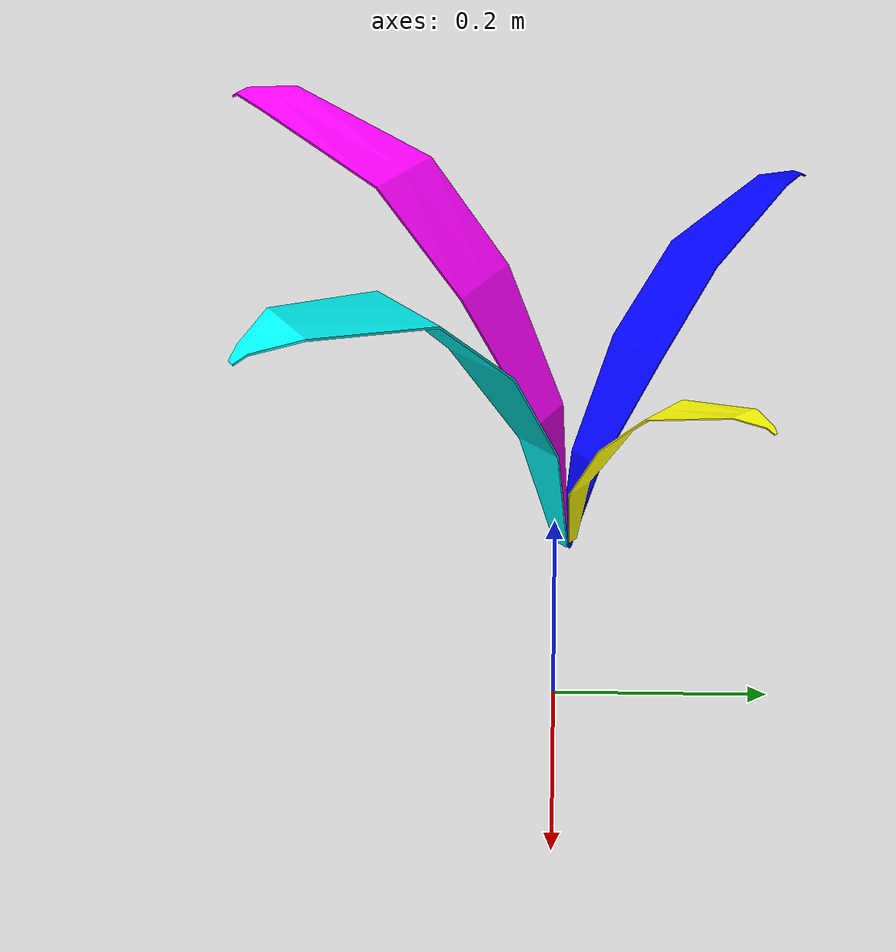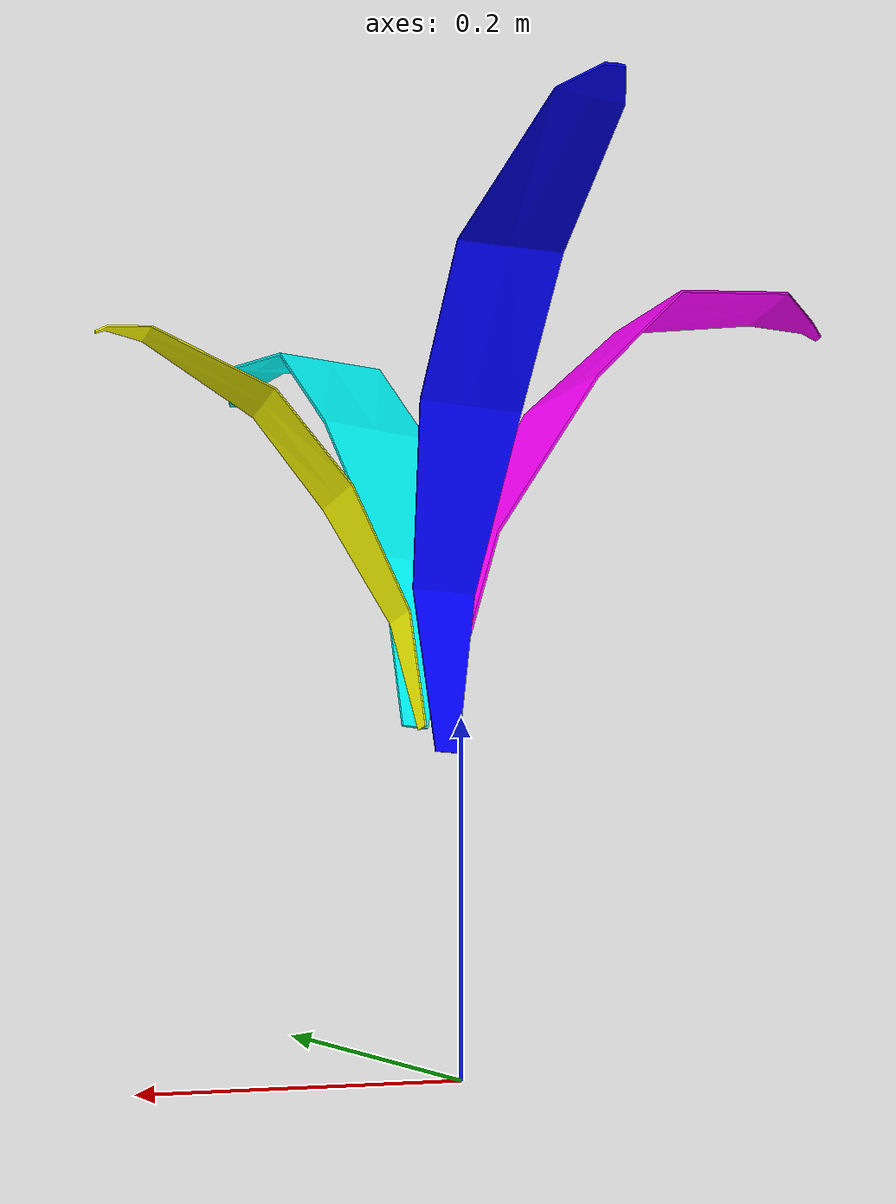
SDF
<?xml version="1.0"?>
<sdf version="1.8">
  <model name="perception_label_plant">
    <static>true</static>
    <link name="label_link">
      <visual name="leaf_1_label">
        <pose>0 0 0.0001 1.57079632679 0 0</pose>
        <cast_shadows>false</cast_shadows>
        <geometry>
          <mesh>
            <uri>model://perception_label_plant/meshes/leaf_1.obj</uri>
            <scale>0.10 0.10 0.10</scale>
          </mesh>
        </geometry>
        <material>
          <ambient>1.0 0.0 1.0 1</ambient>
          <diffuse>1.0 0.0 1.0 1</diffuse>
          <emissive>1.0 0.0 1.0 1</emissive>
          <specular>0 0 0 1</specular>
        </material>
      </visual>
      <visual name="leaf_2_label">
        <pose>0 0 0.0001 1.57079632679 0 0</pose>
        <cast_shadows>false</cast_shadows>
        <geometry>
          <mesh>
            <uri>model://perception_label_plant/meshes/leaf_2.obj</uri>
            <scale>0.10 0.10 0.10</scale>
          </mesh>
        </geometry>
        <material>
          <ambient>0.0 1.0 1.0 1</ambient>
          <diffuse>0.0 1.0 1.0 1</diffuse>
          <emissive>0.0 1.0 1.0 1</emissive>
          <specular>0 0 0 1</specular>
        </material>
      </visual>
      <visual name="leaf_3_label">
        <pose>0 0 0.0001 1.57079632679 0 0</pose>
        <cast_shadows>false</cast_shadows>
        <geometry>
          <mesh>
            <uri>model://perception_label_plant/meshes/leaf_3.obj</uri>
            <scale>0.10 0.10 0.10</scale>
          </mesh>
        </geometry>
        <material>
          <ambient>1.0 1.0 0.0 1</ambient>
          <diffuse>1.0 1.0 0.0 1</diffuse>
          <emissive>1.0 1.0 0.0 1</emissive>
          <specular>0 0 0 1</specular>
        </material>
      </visual>
      <visual name="leaf_4_label">
        <pose>0 0 0.0001 1.57079632679 0 0</pose>
        <cast_shadows>false</cast_shadows>
        <geometry>
          <mesh>
            <uri>model://perception_label_plant/meshes/leaf_4.obj</uri>
            <scale>0.10 0.10 0.10</scale>
          </mesh>
        </geometry>
        <material>
          <ambient>0.0 0.0 1.0 1</ambient>
          <diffuse>0.0 0.0 1.0 1</diffuse>
          <emissive>0.0 0.0 1.0 1</emissive>
          <specular>0 0 0 1</specular>
        </material>
      </visual>
    </link>
  </model>
</sdf>
